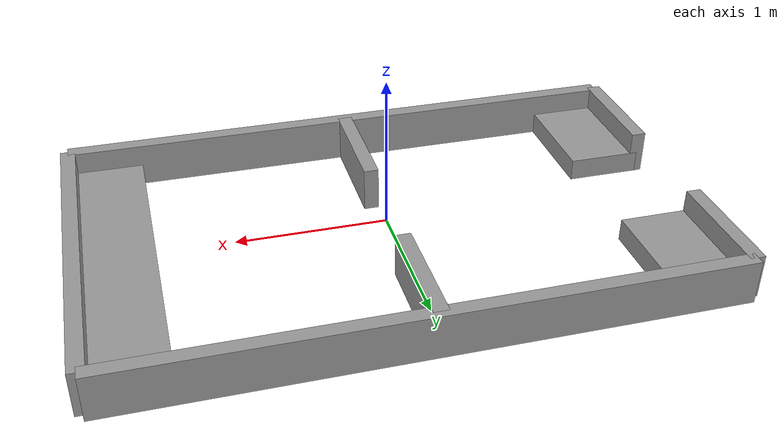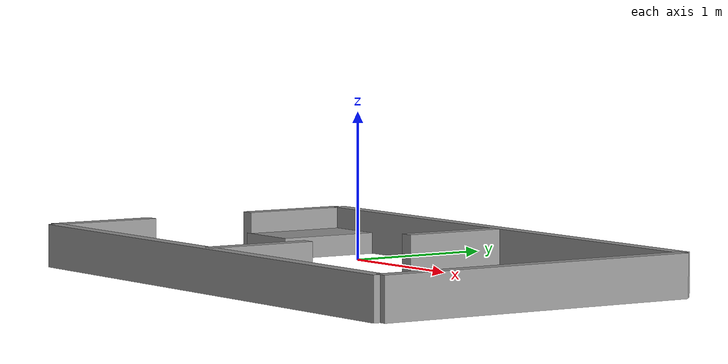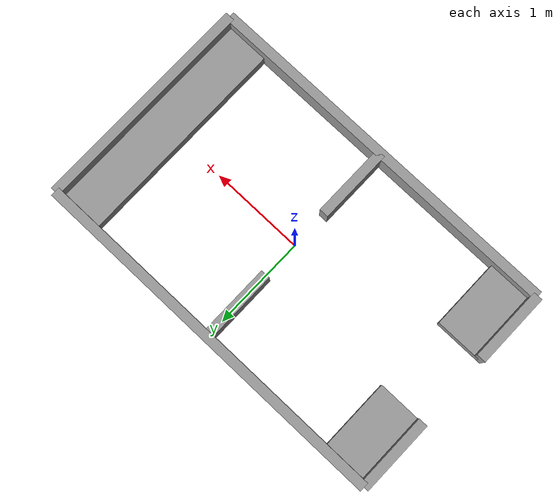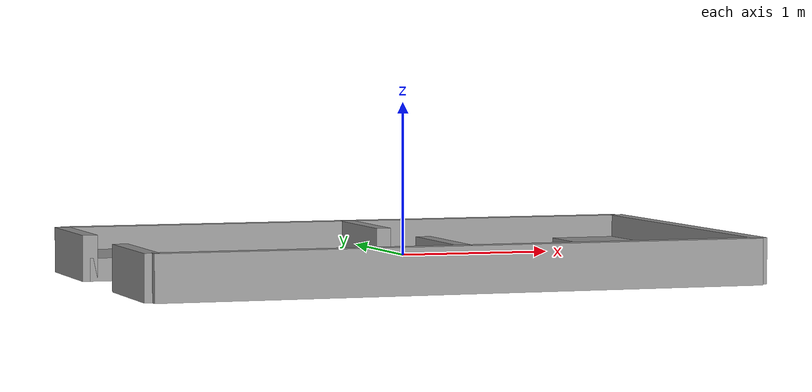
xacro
<?xml version="1.0"?>
<robot xmlns:xacro="http://www.ros.org/wiki/xacro" name="arena">
  <link name="wall_1">
    <inertial>
      <origin xyz="0 1.20 0" />
      <mass value="10.0" />
      <inertia  ixx="1.0" ixy="0.0"  ixz="0.0"  iyy="1.0"  iyz="0.0"  izz="1.0" />
    </inertial>
    <visual>
      <origin xyz="0 1.20 0"/>
      <geometry>
        <box size="4 0.1 0.3" />
      </geometry>
    </visual>
    <collision>
      <origin xyz="0 1.20 0"/>
      <geometry>
      <box size="4 0.1 0.3" />
      </geometry>
    </collision>
  </link>

  <joint name="join1" type="fixed">
    <origin xyz="2 0 0" rpy="0 0 0"/>
    <parent link="wall_1"/>
    <child link="wall_2"/>
  </joint>

    <link name="wall_2">
    <inertial>
      <origin xyz="0 0 0" />
      <mass value="10.0" />
      <inertia  ixx="1.0" ixy="0.0"  ixz="0.0"  iyy="1.0"  iyz="0.0"  izz="1.0" />
    </inertial>
    <visual>
      <origin xyz="0 0 0"/>
      <geometry>
        <box size="0.1 -2.40 0.3" />
      </geometry>
    </visual>
    <collision>
      <origin xyz="0 0 0"/>
      <geometry>
        <box size="0.1 -2.40 0.3" />
      </geometry>
    </collision>
  </link>

  <joint name="join2" type="fixed">
    <origin xyz="-2 -1.2 0" rpy="0 0 0"/>
    <parent link="wall_2"/>
    <child link="wall_3"/>
  </joint>

  <link name="wall_3">
    <inertial>
      <origin xyz="0 0 0" />
      <mass value="10.0" />
      <inertia  ixx="1.0" ixy="0.0"  ixz="0.0"  iyy="1.0"  iyz="0.0"  izz="1.0" />
    </inertial>
    <visual>
      <origin xyz="0 0 0"/>
      <geometry>
        <box size="4 0.1 0.3" />
      </geometry>
    </visual>
    <collision>
      <origin xyz="0 0 0"/>
      <geometry>
      <box size="4 0.1 0.3" />
      </geometry>
    </collision>
  </link>

  <joint name="join10" type="fixed">
    <origin xyz="-0.25 0.0 0.0" rpy="0 0 0"/>
    <parent link="wall_2"/>
    <child link="wall_10"/>
  </joint>

  <link name="wall_10">
    <inertial>
      <origin xyz="0 0.0 -0.075" />
      <mass value="10.0" />
      <inertia  ixx="1.0" ixy="0.0"  ixz="0.0"  iyy="1.0"  iyz="0.0"  izz="1.0" />
    </inertial>
    <visual>
      <origin xyz="0 0.0 -0.075"/>
      <geometry>
        <box size="0.5 2.4 0.15" />
      </geometry>
    </visual>
    <collision>
      <origin xyz="0 0.0 -0.075" />
      <geometry>
      <box size="0.5 2.4 0.15" />
      </geometry>
    </collision>
  </link>

  <joint name="join3" type="fixed">
    <origin xyz="0 -0.4 0" rpy="0 0 0"/>
    <parent link="wall_3"/>
    <child link="wall_4"/>
  </joint>

  <link name="wall_4">
    <inertial>
      <origin xyz="0 0.8 0" />
      <mass value="10.0" />
      <inertia  ixx="1.0" ixy="0.0"  ixz="0.0"  iyy="1.0"  iyz="0.0"  izz="1.0" />
    </inertial>
    <visual>
      <origin xyz="0 0.8 0"/>
      <geometry>
        <box size="0.1 0.8 0.3" />
      </geometry>
    </visual>
    <collision>
      <origin xyz="0 0.8 0"/>
      <geometry>
      <box size="0.1 0.8 0.3" />
      </geometry>
    </collision>
  </link>

  <joint name="join4" type="fixed">
    <origin xyz="0 0 0" rpy="0 0 0"/>
    <parent link="wall_1"/>
    <child link="wall_5"/>
  </joint>

  <link name="wall_5">
    <inertial>
      <origin xyz="0 0.8 0" />
      <mass value="10.0" />
      <inertia  ixx="1.0" ixy="0.0"  ixz="0.0"  iyy="1.0"  iyz="0.0"  izz="1.0" />
    </inertial>
    <visual>
      <origin xyz="0 0.8 0"/>
      <geometry>
        <box size="0.1 0.8 0.3" />
      </geometry>
    </visual>
    <collision>
      <origin xyz="0 0.8 0" />
      <geometry>
      <box size="0.1 0.8 0.3" />
      </geometry>
    </collision>
  </link>

----------
  <joint name="join5" type="fixed">
    <origin xyz="-2 -0.4 0" rpy="0 0 0"/>
    <parent link="wall_3"/>
    <child link="wall_6"/>
  </joint>

  <link name="wall_6">
    <inertial>
      <origin xyz="0 0.8 0" />
      <mass value="10.0" />
      <inertia  ixx="1.0" ixy="0.0"  ixz="0.0"  iyy="1.0"  iyz="0.0"  izz="1.0" />
    </inertial>
    <visual>
      <origin xyz="0 0.8 0"/>
      <geometry>
        <box size="0.1 0.8 0.3" />
      </geometry>
    </visual>
    <collision>
      <origin xyz="0 0.8 0"/>
      <geometry>
      <box size="0.1 0.8 0.3" />
      </geometry>
    </collision>
  </link>

  <joint name="join8" type="fixed">
    <origin xyz="0.25 0.8 0.0" rpy="0 0 0"/>
    <parent link="wall_6"/>
    <child link="wall_9"/>
  </joint>

  <link name="wall_9">
    <inertial>
      <origin xyz="0 0.0 -0.075" />
      <mass value="10.0" />
      <inertia  ixx="1.0" ixy="0.0"  ixz="0.0"  iyy="1.0"  iyz="0.0"  izz="1.0" />
    </inertial>
    <visual>
      <origin xyz="0 0.0 -0.075"/>
      <geometry>
        <box size="0.5 0.8 0.15" />
      </geometry>
    </visual>
    <collision>
      <origin xyz="0 0.0 -0.075" />
      <geometry>
      <box size="0.5 0.8 0.15" />
      </geometry>
    </collision>
  </link>

  <joint name="join6" type="fixed">
    <origin xyz="-2 0 0" rpy="0 0 0"/>
    <parent link="wall_1"/>
    <child link="wall_7"/>
  </joint>

  <link name="wall_7">
    <inertial>
      <origin xyz="0 0.8 0" />
      <mass value="10.0" />
      <inertia  ixx="1.0" ixy="0.0"  ixz="0.0"  iyy="1.0"  iyz="0.0"  izz="1.0" />
    </inertial>
    <visual>
      <origin xyz="0 0.8 0"/>
      <geometry>
        <box size="0.1 0.8 0.3" />
      </geometry>
    </visual>
    <collision>
      <origin xyz="0 0.8 0" />
      <geometry>
      <box size="0.1 0.8 0.3" />
      </geometry>
    </collision>
  </link>

  <joint name="join7" type="fixed">
    <origin xyz="0.25 0.8 0.0" rpy="0 0 0"/>
    <parent link="wall_7"/>
    <child link="wall_8"/>
  </joint>

  <link name="wall_8">
    <inertial>
      <origin xyz="0 0.0 -0.075" />
      <mass value="10.0" />
      <inertia  ixx="1.0" ixy="0.0"  ixz="0.0"  iyy="1.0"  iyz="0.0"  izz="1.0" />
    </inertial>
    <visual>
      <origin xyz="0 0.0 -0.075"/>
      <geometry>
        <box size="0.5 0.8 0.15" />
      </geometry>
    </visual>
    <collision>
      <origin xyz="0 0.0 -0.075" />
      <geometry>
      <box size="0.5 0.8 0.15" />
      </geometry>
    </collision>
  </link>

  <gazebo reference="wall_1">
  <material>Gazebo/Gray</material>
  <selfCollide>true</selfCollide>
  </gazebo>
  <gazebo reference="wall_2">
  <material>Gazebo/Gray</material>
  <selfCollide>true</selfCollide>
  </gazebo>
  <gazebo reference="wall_3">
  <material>Gazebo/Gray</material>
  <selfCollide>true</selfCollide>
  </gazebo>
  <gazebo reference="wall_4">
  <material>Gazebo/Gray</material>
  <selfCollide>true</selfCollide>
  </gazebo>
  <gazebo reference="wall_5">
  <material>Gazebo/Gray</material>
  <selfCollide>true</selfCollide>
  </gazebo>
  <gazebo reference="wall_6">
  <material>Gazebo/Gray</material>
  <selfCollide>true</selfCollide>
  </gazebo>
  <gazebo reference="wall_7">
  <material>Gazebo/Gray</material>
  <selfCollide>true</selfCollide>
  </gazebo>
  <gazebo reference="wall_8">
  <material>Gazebo/Gray</material>
  <selfCollide>true</selfCollide>
  </gazebo>
  <gazebo reference="wall_9">
  <material>Gazebo/Gray</material>
  <selfCollide>true</selfCollide>
  </gazebo>
  <gazebo reference="wall_10">
  <material>Gazebo/Gray</material>
  <selfCollide>true</selfCollide>
  </gazebo>

</robot>
